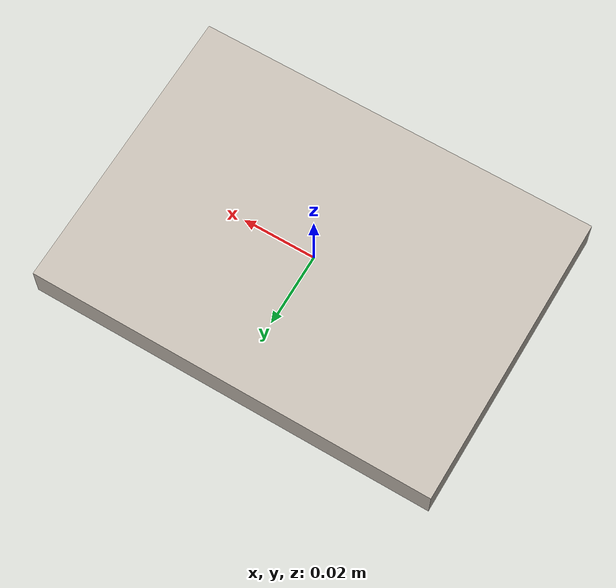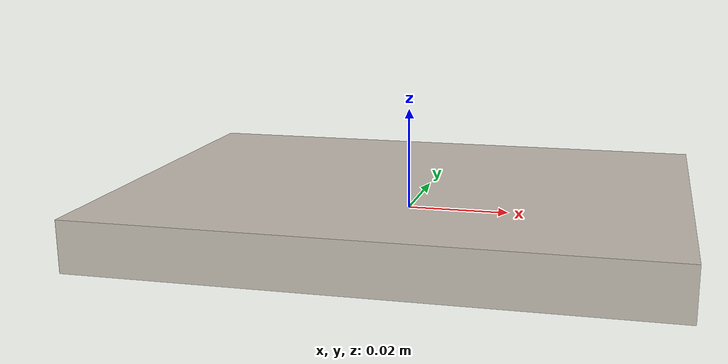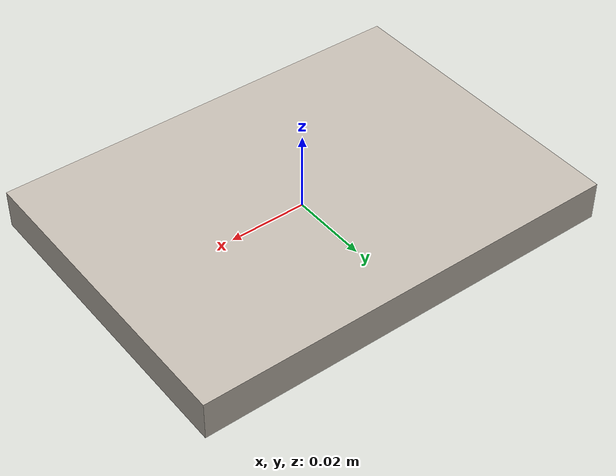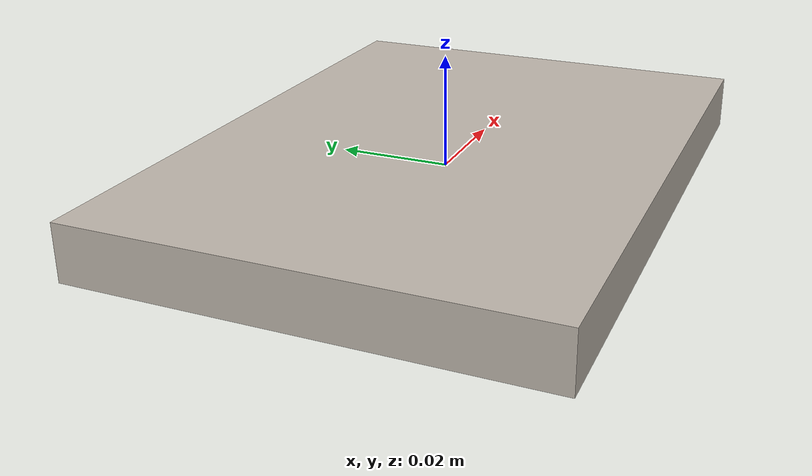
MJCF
<mujoco model="vla82_vla82_051__aux_04">
  <compiler angle="radian"/>
  <asset>
    <texture name="source_texture" type="2d" file="source_texture.png"/>
    <material name="source_material" texture="source_texture" rgba="1 1 1 1"/>
  </asset>
  <default>
    <default class="visual"><geom contype="0" conaffinity="0" group="1"/></default>
    <default class="collision"><geom contype="1" conaffinity="1" group="0" density="300" friction="0.82 0.008 0.0003" solref="0.02 1" solimp="0.9 0.95 0.001"/></default>
    <default class="region"><geom contype="0" conaffinity="0" group="1" rgba="0 1 0 0" mass="0"/></default>
  </default>
  <worldbody><body><body name="object">
    <geom name="visual" class="visual" type="box" size="0.055000 0.040000 0.005000" material="source_material"/>
    <geom name="collision" class="collision" type="box" size="0.055000 0.040000 0.005000"/>
    <geom name="reg_bbox" class="region" type="box" pos="0 0 0" size="0.055000 0.040000 0.005000"/>
  </body></body></worldbody>
  <actuator/>
</mujoco>
